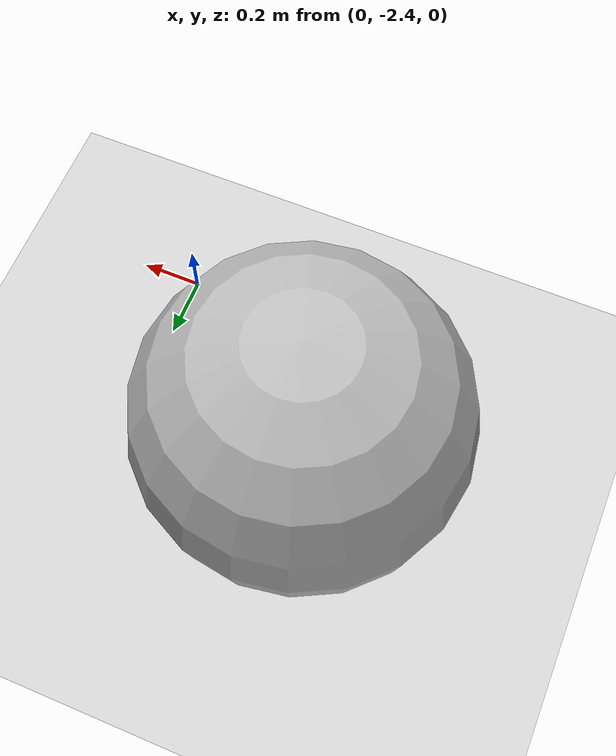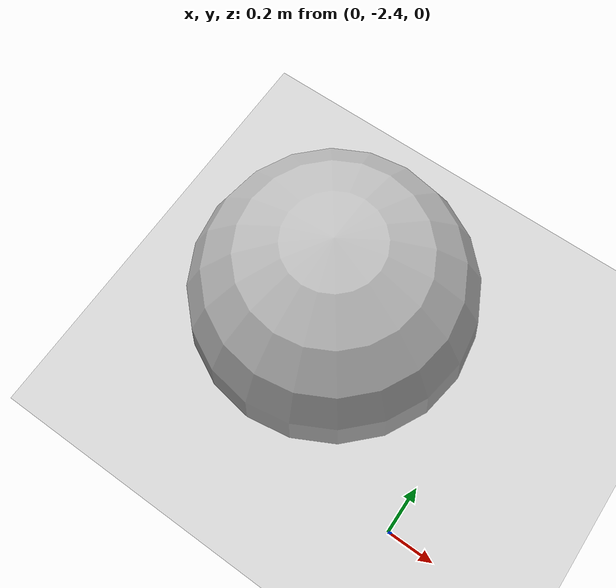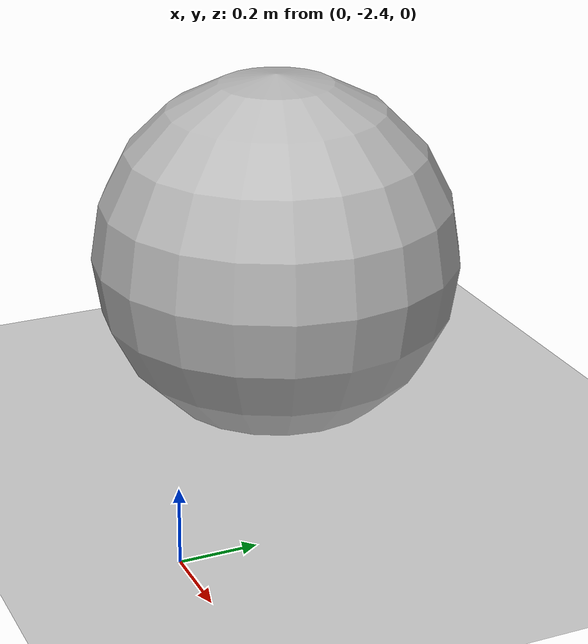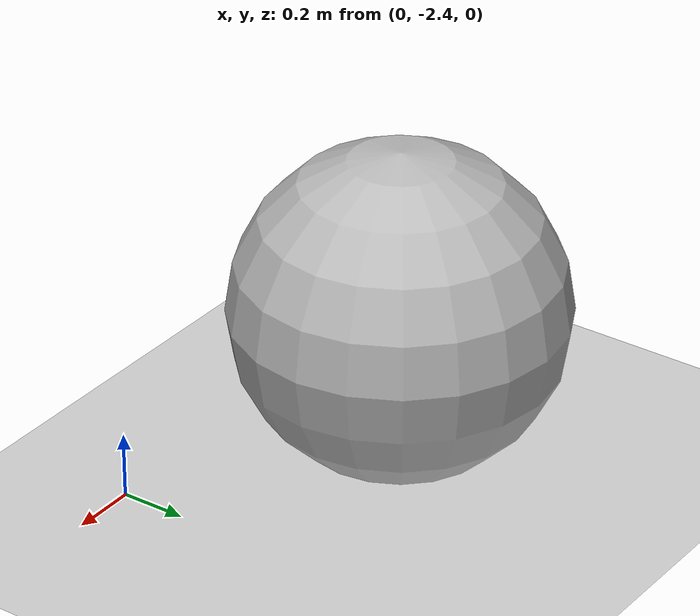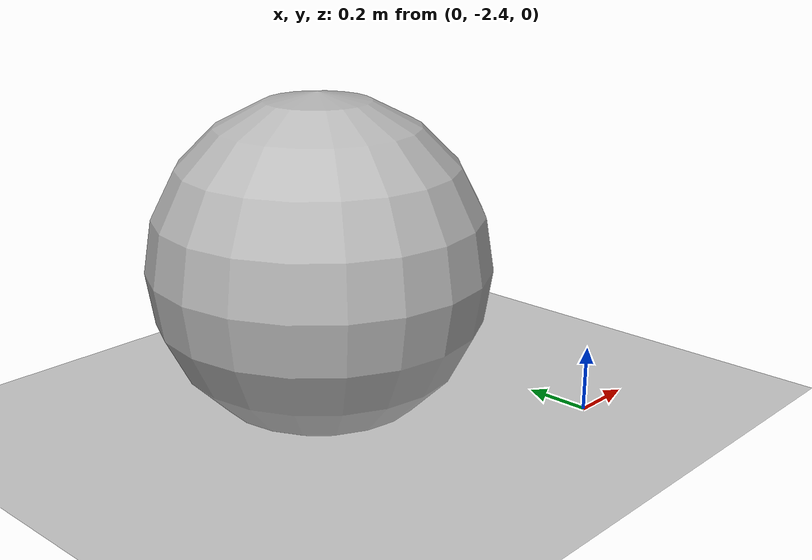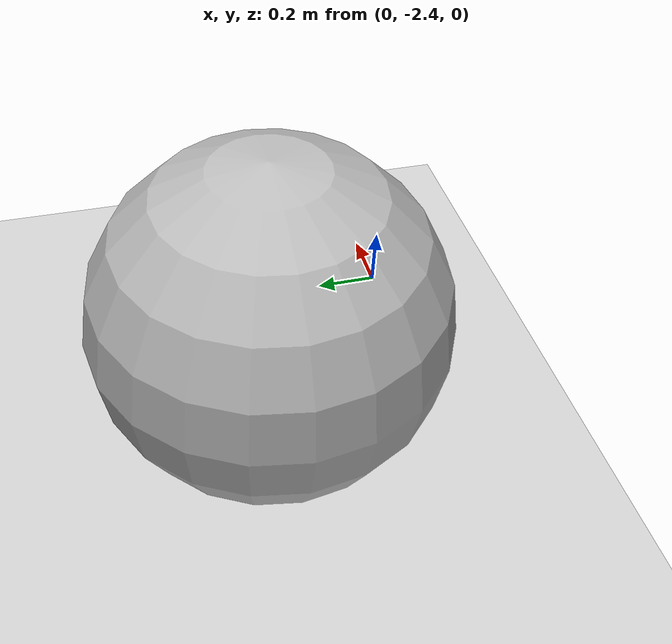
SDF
<?xml version="1.0" ?>
<sdf version='1.6'>
  <world name='default'>
    <light name='sun' type='directional'>
      <cast_shadows>1</cast_shadows>
      <pose frame=''>0 0 10 0 -0 0</pose>
      <diffuse>0.8 0.8 0.8 1</diffuse>
      <specular>0.1 0.1 0.1 1</specular>
      <attenuation>
        <range>1000</range>
        <constant>0.9</constant>
        <linear>0.01</linear>
        <quadratic>0.001</quadratic>
      </attenuation>
      <direction>-0.5 0.5 -1</direction>
    </light>

    <model name='ground_plane'>
      <static>1</static>
      <link name='link'>
        <collision name='collision'>
          <geometry>
            <plane>
              <normal>0 0 1</normal>
              <size>100 100</size>
            </plane>
          </geometry>
          <surface>
            <friction>
              <ode>
                <mu>100</mu>
                <mu2>50</mu2>
              </ode>
            </friction>
          </surface>
          <max_contacts>10</max_contacts>
        </collision>
        <visual name='visual'>
          <cast_shadows>0</cast_shadows>
          <geometry>
            <plane>
              <normal>0 0 1</normal>
              <size>100 100</size>
            </plane>
          </geometry>
          <material>
            <script>
              <uri>file://media/materials/scripts/gazebo.material</uri>
              <name>Gazebo/Grey</name>
            </script>
          </material>
        </visual>
      </link>
    </model>

    <model name='unit_cylinder_0'>
      <pose frame=''>-0.617073 -1.87563 0.5 0 -0 0</pose>
      <link name='link'>
        <collision name='collision'>
          <geometry>
            <sphere>
              <radius>0.5</radius>
            </sphere>
          </geometry>
          <max_contacts>10</max_contacts>
        </collision>
        <visual name='visual'>
          <geometry>
            <sphere>
              <radius>0.5</radius>
            </sphere>
          </geometry>
        </visual>
        <self_collide>0</self_collide>
        <kinematic>0</kinematic>
        <gravity>1</gravity>
      </link>
    </model>
    <gui fullscreen='0'>
      <camera name='user_camera'>
        <pose frame=''>5 -5 2 0 0.275643 2.35619</pose>
        <view_controller>orbit</view_controller>
        <projection_type>perspective</projection_type>
      </camera>
    </gui>
  </world>
</sdf>
